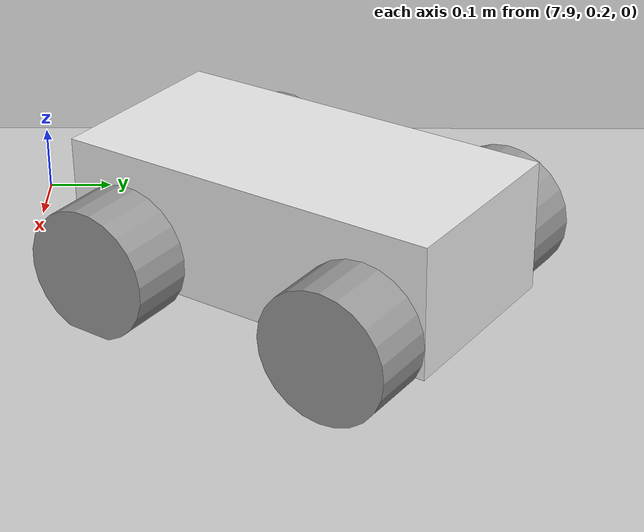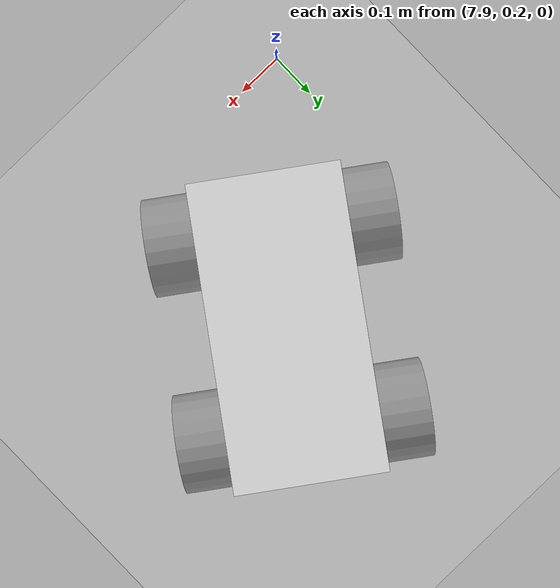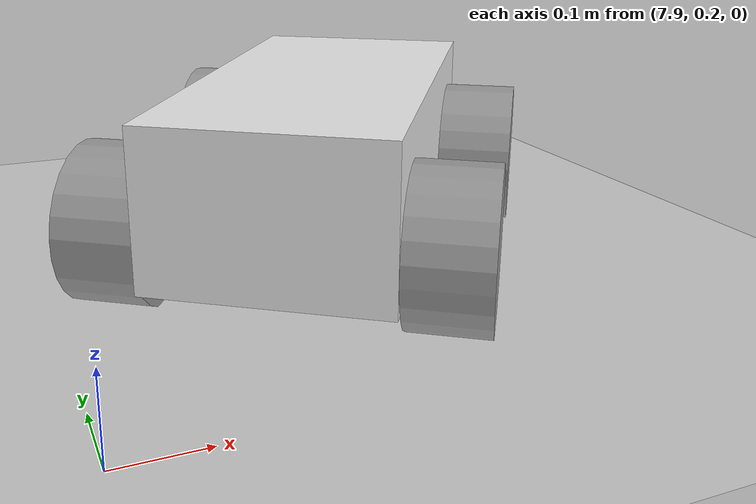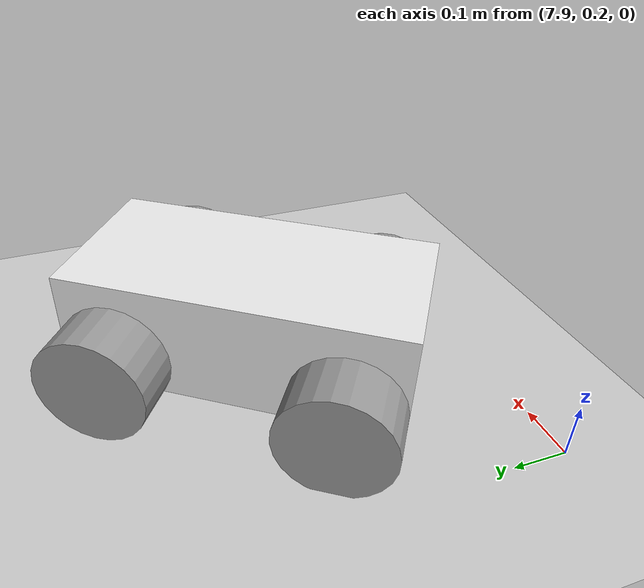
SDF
<sdf version="1.6">
 <world name="default">
  <model name="ground_plane">
   <static>1</static>
   <link name="link">
    <collision name="collision">
     <geometry><plane><normal>0 0 1</normal><size>100 100</size></plane></geometry>
     <surface>
      <contact><collide_bitmask>65535</collide_bitmask></contact>
      <friction><ode><mu>100</mu><mu2>50</mu2></ode></friction>
     </surface>
    </collision>
    <visual name="visual">
     <cast_shadows>0</cast_shadows>
     <geometry><plane><normal>0 0 1</normal><size>100 100</size></plane></geometry>
     <material>
      <script><uri>file://media/materials/scripts/gazebo.material</uri><name>Gazebo/Grey</name></script>
     </material>
    </visual>
   </link>
  </model>
  <model name="MobileRobot">
   <link name="link_1">
    <pose>6.56986 0.243352 0.109995 1.57004 1.5524 0.455973</pose>
    <inertial>
     <mass>1</mass>
     <inertia><ixx>0.145833</ixx><ixy>0</ixy><ixz>0</ixz><iyy>0.145833</iyy><iyz>0</iyz><izz>0.125</izz></inertia>
    </inertial>
    <visual name="visual">
     <geometry><cylinder><radius>0.1</radius><length>0.1</length></cylinder></geometry>
     <material>
      <lighting>1</lighting>
      <script><uri>file://media/materials/scripts/gazebo.material</uri><name>Gazebo/Grey</name></script>
      <shader type="pixel"><normal_map>__default__</normal_map></shader>
      <ambient>0 0 0 1</ambient>
      <diffuse>0.7 0.7 0.7 1</diffuse>
      <specular>0.01 0.01 0.01 1</specular>
      <emissive>0 0 0 1</emissive>
     </material>
    </visual>
    <collision name="collision">
     <geometry><cylinder><radius>0.1</radius><length>0.1</length></cylinder></geometry>
     <surface>
      <friction>
       <ode><mu>1</mu><mu2>1</mu2><fdir1>0 0 0</fdir1><slip1>0</slip1><slip2>0</slip2></ode>
       <torsional>
        <coefficient>1</coefficient>
        <patch_radius>0</patch_radius>
        <surface_radius>0</surface_radius>
        <use_patch_radius>1</use_patch_radius>
        <ode><slip>0</slip></ode>
       </torsional>
      </friction>
      <bounce><restitution_coefficient>0</restitution_coefficient><threshold>1e+06</threshold></bounce>
      <contact>
       <collide_without_contact>0</collide_without_contact>
       <collide_without_contact_bitmask>1</collide_without_contact_bitmask>
       <collide_bitmask>1</collide_bitmask>
       <ode>
        <soft_cfm>0</soft_cfm>
        <soft_erp>0.2</soft_erp>
        <kp>1e+13</kp>
        <kd>1</kd>
        <max_vel>0.01</max_vel>
        <min_depth>0</min_depth>
       </ode>
       <bullet>
        <split_impulse>1</split_impulse>
        <split_impulse_penetration_threshold>-0.01</split_impulse_penetration_threshold>
        <soft_cfm>0</soft_cfm>
        <soft_erp>0.2</soft_erp>
        <kp>1e+13</kp>
        <kd>1</kd>
       </bullet>
      </contact>
     </surface>
    </collision>
   </link>
   <link name="link_1_clone">
    <pose>6.21083 0.067016 0.099992 1.57078 0.110851 0.45737</pose>
    <inertial>
     <mass>1</mass>
     <inertia><ixx>0.145833</ixx><ixy>0</ixy><ixz>0</ixz><iyy>0.145833</iyy><iyz>0</iyz><izz>0.125</izz></inertia>
    </inertial>
    <visual name="visual">
     <geometry><cylinder><radius>0.1</radius><length>0.1</length></cylinder></geometry>
     <material>
      <lighting>1</lighting>
      <script><uri>file://media/materials/scripts/gazebo.material</uri><name>Gazebo/Grey</name></script>
      <shader type="pixel"><normal_map>__default__</normal_map></shader>
      <ambient>0 0 0 1</ambient>
      <diffuse>0.7 0.7 0.7 1</diffuse>
      <specular>0.01 0.01 0.01 1</specular>
      <emissive>0 0 0 1</emissive>
     </material>
    </visual>
    <collision name="collision">
     <geometry><cylinder><radius>0.1</radius><length>0.1</length></cylinder></geometry>
     <surface>
      <friction>
       <ode><mu>1</mu><mu2>1</mu2><fdir1>0 0 0</fdir1><slip1>0</slip1><slip2>0</slip2></ode>
       <torsional>
        <coefficient>1</coefficient>
        <patch_radius>0</patch_radius>
        <surface_radius>0</surface_radius>
        <use_patch_radius>1</use_patch_radius>
        <ode><slip>0</slip></ode>
       </torsional>
      </friction>
      <bounce><restitution_coefficient>0</restitution_coefficient><threshold>1e+06</threshold></bounce>
      <contact>
       <collide_without_contact>0</collide_without_contact>
       <collide_without_contact_bitmask>1</collide_without_contact_bitmask>
       <collide_bitmask>1</collide_bitmask>
       <ode>
        <soft_cfm>0</soft_cfm>
        <soft_erp>0.2</soft_erp>
        <kp>1e+13</kp>
        <kd>1</kd>
        <max_vel>0.01</max_vel>
        <min_depth>0</min_depth>
       </ode>
       <bullet>
        <split_impulse>1</split_impulse>
        <split_impulse_penetration_threshold>-0.01</split_impulse_penetration_threshold>
        <soft_cfm>0</soft_cfm>
        <soft_erp>0.2</soft_erp>
        <kp>1e+13</kp>
        <kd>1</kd>
       </bullet>
      </contact>
     </surface>
    </collision>
   </link>
   <link name="link_1_clone_0">
    <pose>6.74629 -0.115713 0.100001 -1.57078 0.76703 -2.68421</pose>
    <inertial>
     <mass>1</mass>
     <inertia><ixx>0.145833</ixx><ixy>0</ixy><ixz>0</ixz><iyy>0.145833</iyy><iyz>0</iyz><izz>0.125</izz></inertia>
    </inertial>
    <visual name="visual">
     <geometry><cylinder><radius>0.1</radius><length>0.1</length></cylinder></geometry>
     <material>
      <lighting>1</lighting>
      <script><uri>file://media/materials/scripts/gazebo.material</uri><name>Gazebo/Grey</name></script>
      <shader type="pixel"><normal_map>__default__</normal_map></shader>
      <ambient>0 0 0 1</ambient>
      <diffuse>0.7 0.7 0.7 1</diffuse>
      <specular>0.01 0.01 0.01 1</specular>
      <emissive>0 0 0 1</emissive>
     </material>
    </visual>
    <collision name="collision">
     <geometry><cylinder><radius>0.1</radius><length>0.1</length></cylinder></geometry>
     <surface>
      <friction>
       <ode><mu>1</mu><mu2>1</mu2><fdir1>0 0 0</fdir1><slip1>0</slip1><slip2>0</slip2></ode>
       <torsional>
        <coefficient>1</coefficient>
        <patch_radius>0</patch_radius>
        <surface_radius>0</surface_radius>
        <use_patch_radius>1</use_patch_radius>
        <ode><slip>0</slip></ode>
       </torsional>
      </friction>
      <bounce><restitution_coefficient>0</restitution_coefficient><threshold>1e+06</threshold></bounce>
      <contact>
       <collide_without_contact>0</collide_without_contact>
       <collide_without_contact_bitmask>1</collide_without_contact_bitmask>
       <collide_bitmask>1</collide_bitmask>
       <ode>
        <soft_cfm>0</soft_cfm>
        <soft_erp>0.2</soft_erp>
        <kp>1e+13</kp>
        <kd>1</kd>
        <max_vel>0.01</max_vel>
        <min_depth>0</min_depth>
       </ode>
       <bullet>
        <split_impulse>1</split_impulse>
        <split_impulse_penetration_threshold>-0.01</split_impulse_penetration_threshold>
        <soft_cfm>0</soft_cfm>
        <soft_erp>0.2</soft_erp>
        <kp>1e+13</kp>
        <kd>1</kd>
       </bullet>
      </contact>
     </surface>
    </collision>
   </link>
   <link name="link_1_clone_1">
    <pose>6.38729 -0.292109 0.099998 -1.57076 1.15777 -2.68419</pose>
    <inertial>
     <mass>1</mass>
     <inertia><ixx>0.145833</ixx><ixy>0</ixy><ixz>0</ixz><iyy>0.145833</iyy><iyz>0</iyz><izz>0.125</izz></inertia>
    </inertial>
    <visual name="visual">
     <geometry><cylinder><radius>0.1</radius><length>0.1</length></cylinder></geometry>
     <material>
      <lighting>1</lighting>
      <script><uri>file://media/materials/scripts/gazebo.material</uri><name>Gazebo/Grey</name></script>
      <shader type="pixel"><normal_map>__default__</normal_map></shader>
      <ambient>0 0 0 1</ambient>
      <diffuse>0.7 0.7 0.7 1</diffuse>
      <specular>0.01 0.01 0.01 1</specular>
      <emissive>0 0 0 1</emissive>
     </material>
    </visual>
    <collision name="collision">
     <geometry><cylinder><radius>0.1</radius><length>0.1</length></cylinder></geometry>
     <surface>
      <friction>
       <ode><mu>1</mu><mu2>1</mu2><fdir1>0 0 0</fdir1><slip1>0</slip1><slip2>0</slip2></ode>
       <torsional>
        <coefficient>1</coefficient>
        <patch_radius>0</patch_radius>
        <surface_radius>0</surface_radius>
        <use_patch_radius>1</use_patch_radius>
        <ode><slip>0</slip></ode>
       </torsional>
      </friction>
      <bounce><restitution_coefficient>0</restitution_coefficient><threshold>1e+06</threshold></bounce>
      <contact>
       <collide_without_contact>0</collide_without_contact>
       <collide_without_contact_bitmask>1</collide_without_contact_bitmask>
       <collide_bitmask>1</collide_bitmask>
       <ode>
        <soft_cfm>0</soft_cfm>
        <soft_erp>0.2</soft_erp>
        <kp>1e+13</kp>
        <kd>1</kd>
        <max_vel>0.01</max_vel>
        <min_depth>0</min_depth>
       </ode>
       <bullet>
        <split_impulse>1</split_impulse>
        <split_impulse_penetration_threshold>-0.01</split_impulse_penetration_threshold>
        <soft_cfm>0</soft_cfm>
        <soft_erp>0.2</soft_erp>
        <kp>1e+13</kp>
        <kd>1</kd>
       </bullet>
      </contact>
     </surface>
    </collision>
   </link>
   <link name="link_3">
    <pose>6.47856 -0.024348 0.149996 -1.4e-05 -8e-06 0.4567</pose>
    <inertial>
     <mass>1</mass>
     <inertia>
      <ixx>0.166667</ixx>
      <ixy>0</ixy>
      <ixz>0</ixz>
      <iyy>0.166667</iyy>
      <iyz>0</iyz>
      <izz>0.166667</izz>
     </inertia>
    </inertial>
    <visual name="visual">
     <geometry><box><size>0.6 0.3 0.2</size></box></geometry>
     <material>
      <lighting>1</lighting>
      <script><uri>file://media/materials/scripts/gazebo.material</uri><name>Gazebo/White</name></script>
      <shader type="pixel"><normal_map>__default__</normal_map></shader>
      <ambient>0.0 0.7 0.7 1</ambient>
      <diffuse>0.7 0.7 0.7 1</diffuse>
      <specular>0.01 0.01 0.01 1</specular>
      <emissive>0 0 0 1</emissive>
     </material>
    </visual>
    <collision name="collision">
     <geometry><box><size>0.6 0.3 0.2</size></box></geometry>
     <surface>
      <friction>
       <ode><mu>1</mu><mu2>1</mu2><fdir1>0 0 0</fdir1><slip1>0</slip1><slip2>0</slip2></ode>
       <torsional>
        <coefficient>1</coefficient>
        <patch_radius>0</patch_radius>
        <surface_radius>0</surface_radius>
        <use_patch_radius>1</use_patch_radius>
        <ode><slip>0</slip></ode>
       </torsional>
      </friction>
      <bounce><restitution_coefficient>0</restitution_coefficient><threshold>1e+06</threshold></bounce>
      <contact>
       <collide_without_contact>0</collide_without_contact>
       <collide_without_contact_bitmask>1</collide_without_contact_bitmask>
       <collide_bitmask>1</collide_bitmask>
       <ode>
        <soft_cfm>0</soft_cfm>
        <soft_erp>0.2</soft_erp>
        <kp>1e+13</kp>
        <kd>1</kd>
        <max_vel>0.01</max_vel>
        <min_depth>0</min_depth>
       </ode>
       <bullet>
        <split_impulse>1</split_impulse>
        <split_impulse_penetration_threshold>-0.01</split_impulse_penetration_threshold>
        <soft_cfm>0</soft_cfm>
        <soft_erp>0.2</soft_erp>
        <kp>1e+13</kp>
        <kd>1</kd>
       </bullet>
      </contact>
     </surface>
    </collision>
   </link>
   <joint name="link_3_JOINT_1" type="revolute">
    <parent>link_3</parent>
    <child>link_1_clone</child>
    <axis>
     <xyz>0 0 1</xyz>
     <use_parent_model_frame>0</use_parent_model_frame>
     <limit>
      <lower>-1.79769e+308</lower>
      <upper>1.79769e+308</upper>
      <effort>-1</effort>
      <velocity>-1</velocity>
     </limit>
     <dynamics>
      <spring_reference>0</spring_reference>
      <spring_stiffness>0</spring_stiffness>
      <damping>0</damping>
      <friction>0</friction>
     </dynamics>
    </axis>
    <physics>
     <ode><limit><cfm>0</cfm><erp>0.2</erp></limit><suspension><cfm>0</cfm><erp>0.2</erp></suspension></ode>
    </physics>
   </joint>
   <joint name="link_3_JOINT_2" type="revolute">
    <parent>link_3</parent>
    <child>link_1</child>
    <axis>
     <xyz>0 0 1</xyz>
     <use_parent_model_frame>0</use_parent_model_frame>
     <limit>
      <lower>-1.79769e+308</lower>
      <upper>1.79769e+308</upper>
      <effort>-1</effort>
      <velocity>-1</velocity>
     </limit>
     <dynamics>
      <spring_reference>0</spring_reference>
      <spring_stiffness>0</spring_stiffness>
      <damping>0</damping>
      <friction>0</friction>
     </dynamics>
    </axis>
    <physics>
     <ode><limit><cfm>0</cfm><erp>0.2</erp></limit><suspension><cfm>0</cfm><erp>0.2</erp></suspension></ode>
    </physics>
   </joint>
   <joint name="link_3_JOINT_3" type="revolute">
    <parent>link_3</parent>
    <child>link_1_clone_0</child>
    <axis>
     <xyz>0 0 1</xyz>
     <use_parent_model_frame>0</use_parent_model_frame>
     <limit>
      <lower>-1.79769e+308</lower>
      <upper>1.79769e+308</upper>
      <effort>-1</effort>
      <velocity>-1</velocity>
     </limit>
     <dynamics>
      <spring_reference>0</spring_reference>
      <spring_stiffness>0</spring_stiffness>
      <damping>0</damping>
      <friction>0</friction>
     </dynamics>
    </axis>
    <physics>
     <ode><limit><cfm>0</cfm><erp>0.2</erp></limit><suspension><cfm>0</cfm><erp>0.2</erp></suspension></ode>
    </physics>
   </joint>
   <joint name="link_3_JOINT_4" type="revolute">
    <parent>link_3</parent>
    <child>link_1_clone_1</child>
    <axis>
     <xyz>0 0 1</xyz>
     <use_parent_model_frame>0</use_parent_model_frame>
     <limit>
      <lower>-1.79769e+308</lower>
      <upper>1.79769e+308</upper>
      <effort>-1</effort>
      <velocity>-1</velocity>
     </limit>
     <dynamics>
      <spring_reference>0</spring_reference>
      <spring_stiffness>0</spring_stiffness>
      <damping>0</damping>
      <friction>0</friction>
     </dynamics>
    </axis>
    <physics>
     <ode><limit><cfm>0</cfm><erp>0.2</erp></limit><suspension><cfm>0</cfm><erp>0.2</erp></suspension></ode>
    </physics>
   </joint>
   <static>0</static>
   <pose>2.594970 -2.492684 -0.115614 0.008507 -0.017288 0.505325</pose>
  </model>
 </world>
</sdf>
